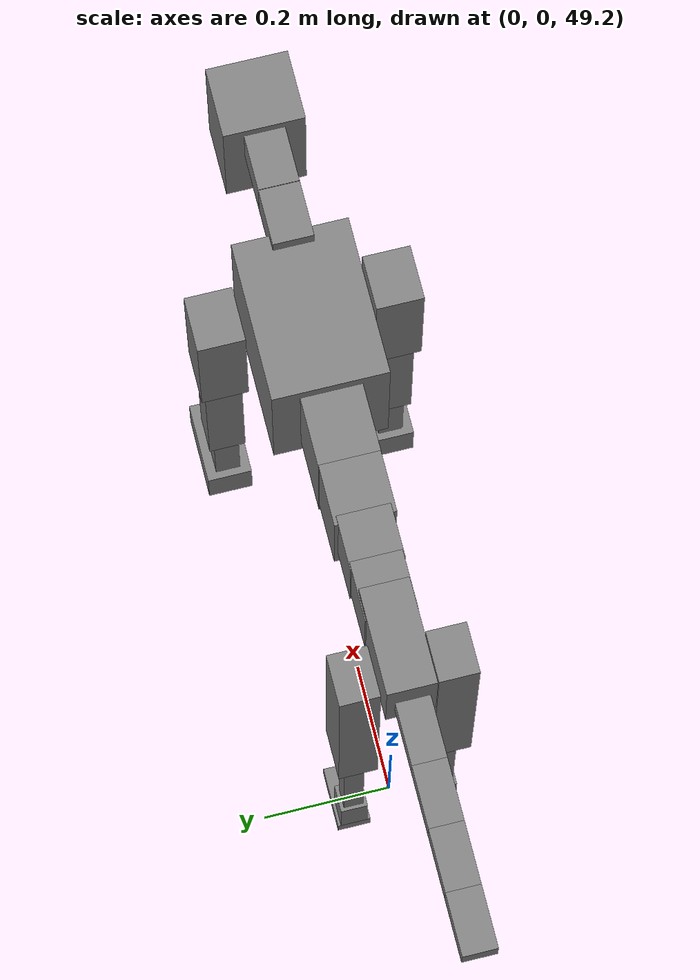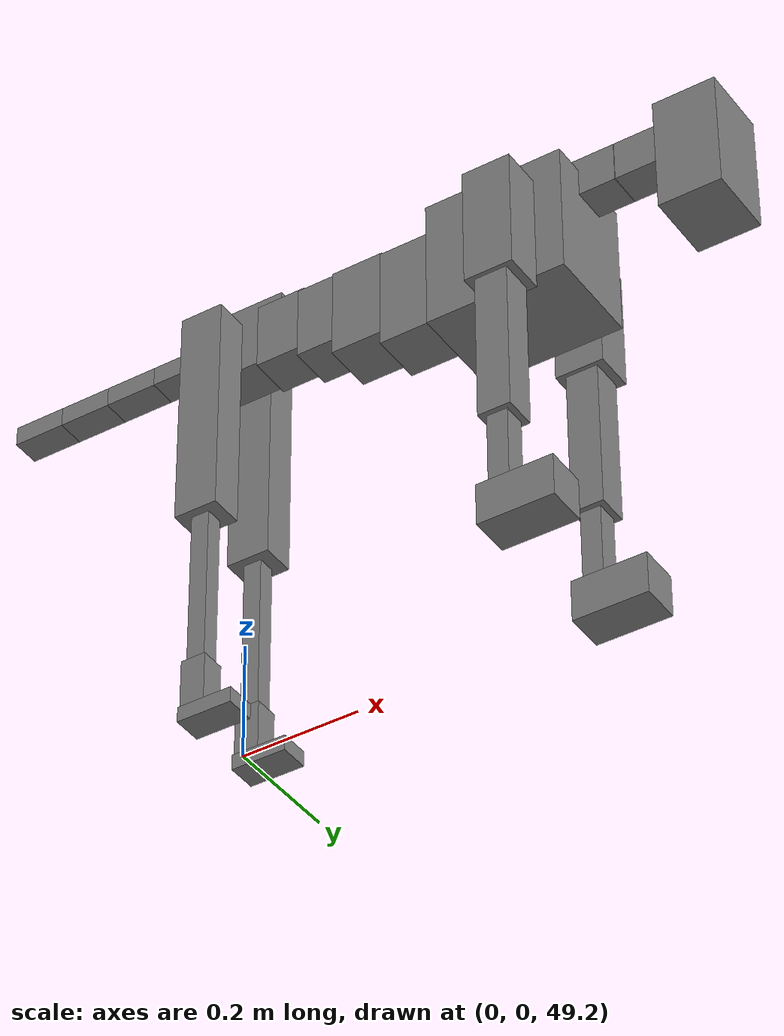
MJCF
<mujoco model="dog">

    <default>
        <joint armature="0.02" stiffness="1" damping="0.2" limited="true"/>
        <geom condim="3" friction="1 0.05 0.05" margin="0.01"/>
        <motor ctrllimited="true" ctrlrange="-1.0 1.0" forcelimited="true" gear="50"/>
    </default>

    <compiler inertiafromgeom="true" angle="radian"/>

    <option timestep="0.016" iterations="50" tolerance="1e-10" solver="Newton" jacobian="dense" cone="pyramidal"/>

    <size nconmax="20000" njmax="60000" nstack="5000000"/>
    <visual>
        <map force="0.1" zfar="30"/>
        <rgba haze="0.15 0.25 0.35 1"/>
        <quality shadowsize="2048"/>
        <global offwidth="800" offheight="800"/>
    </visual>

    <asset>
        <texture type="skybox" builtin="gradient" rgb1="0.3 0.5 0.7" rgb2="0 0 0" width="512" height="512"/>
        <texture name="texplane" type="2d" builtin="checker" rgb1=".2 .3 .4" rgb2=".1 0.15 0.2" width="512" height="512"
                 mark="cross" markrgb=".8 .8 .8"/>
        <texture name="texgeom" type="cube" builtin="flat" mark="cross" width="127" height="1278" rgb1="0.8 0.6 0.4"
                 rgb2="0.8 0.6 0.4" markrgb="1 1 1" random="0.01"/>

        <material name="matplane" reflectance="0.3" texture="texplane" texrepeat="1 1" texuniform="true"/>
        <material name="matgeom" texture="texgeom" texuniform="true" rgba="0.8 0.6 .4 1"/>
    </asset>

    <worldbody>
        <geom name="floor" pos="0 0 0" size="0 0 .25" type="plane" material="matplane" condim="3"/>

        <light directional="false" diffuse=".2 .2 .2" specular="0 0 0" pos="0 0 5" dir="0 0 -1" castshadow="false"/>
        <light mode="targetbodycom" target="torso" directional="false" diffuse=".8 .8 .8" specular="0.3 0.3 0.3"
               pos="0 0 4.0" dir="0 0 -1"/>

        <body name="root" pos="0 0 50">
            <freejoint name="root_1"/>
            <geom type="box" pos="0 0 -0.02" size="0.0774  0.0358  0.063" density="2030"/>

            <body name="spine1" pos="0.054 0 0">
                <joint name="spine1_y" axis="0 1 0" range="0 0.7" limited="true"/>
                <geom type="box" pos="0.02375 0 -0.03" size="0.04375  0.0375  0.05985" density="2030"/>

                <body name="spine2" pos="0.0612 0 0">
                    <joint name="spine2_y" axis="0 1 0" range="-0.15 0.15" limited="true"/>
                    <geom type="box" pos="0.03555  0  -0.04" size="0.04055  0.039  0.06615" density="2030"/>

                    <body name="spine3" pos="0.0730 0 0">
                        <joint name="spine3_y" axis="0 1 0" range="-0.15 0.15" limited="true"/>
                        <geom type="box" pos="0.03555  0  -0.057" size="0.04555  0.0445  0.081" density="2030"/>

                        <body name="spine4" pos="0.0780 0 0">
                            <joint name="spine4_y" axis="0 1 0" range="-0.15 0.15" limited="true"/>
                            <geom type="box" pos="0.05265  0  -0.07" size="0.05265  0.045  0.09135" density="2030"/>

                            <body name="torso" pos="0.1082 0 0">
                                <joint name="torso_y" axis="0 1 0" range="-0.15 0.15" limited="true"/>
                                <geom type="box" pos="0.11925  0  -0.085" size="0.11925  0.085  0.11745"
                                      density="2030"/>

                                <body name="neck1" pos="0.2160  0   0.0180">
                                    <joint name="neck1_y" axis="0 1 0" range="-1.2  -1" limited="true"/>
                                    <geom type="box" pos="0.0423  0  0" size="0.0423  0.03  0.036" density="2325"/>

                                    <body name="neck2" pos="0.0853  0  0">
                                        <joint name="neck2_y" axis="0 1 0" range="0.1  0" limited="true"/>
                                        <geom type="box" pos="0.0423  0  0" size="0.0423  0.03  0.036" density="2325"/>

                                        <body name="head" pos="0.0853  0  0">
                                            <joint name="head_y" axis="0 1 0" range="-0.3  -0.2" limited="true"/>
                                            <geom type="box" pos="0.0531  0  -0.055" size="0.0531  0.06  0.1044"
                                                  density="4030"/>

                                        </body>
                                    </body>
                                </body>

                                <body name="front_shoulder" pos="0.156  0   -0.0480">
                                    <joint name="front_shoulder_y" axis="0 1 0" range="-1 1.5" limited="true"/>
                                    <geom type="box" pos="0 0.13 -0.0804" size="0.0411  0.0351  0.1070" density="1158"/>
                                    <geom type="box" pos="0 -0.13 -0.0804" size="0.0411  0.0351  0.1070"
                                          density="1158"/>

                                    <body name="front_elbow" pos="0  0  -0.1608">
                                        <joint name="front_elbow_y" axis="0 1 0" range="-2 0" limited="true"/>
                                        <geom type="box" pos="0 0.13 -0.1442" size="0.0273  0.0279  0.1442"
                                              density="1081"/>
                                        <geom type="box" pos="0 -0.13 -0.1442" size="0.0273  0.0279  0.1442"
                                              density="1081"/>

                                        <body name="front_wrist" pos="0  0  -0.2884">
                                            <joint name="front_wrist_y" axis="0 1 0" range="-0.2 0" limited="true"/>
                                            <geom type="box" pos="0 0.13 -0.0736" size="0.0173  0.0192  0.0868"
                                                  density="1664"/>
                                            <geom type="box" pos="0 -0.13 -0.0736" size="0.0173  0.0192  0.0868"
                                                  density="1664"/>

                                            <body name="front_finger_end" pos="0  0  -0.1472">
                                                <joint name="front_finger_y" axis="0 1 0" range="-0.4 1"
                                                       limited="true"/>
                                                <geom type="box" pos="0.0346  0.13  -0.0209"
                                                      size="0.0634  0.0346  0.0359" density="1515"/>
                                                <geom type="box" pos="0.0346  -0.13  -0.0209"
                                                      size="0.0634  0.0346  0.0359" density="1515"/>

                                            </body>

                                        </body>
                                    </body>
                                </body>

                            </body>
                        </body>
                    </body>
                </body>
            </body>

            <body name="back_hip" pos="-0.03 0 -0.018">
                <joint name="back_hip_y" axis="0 1 0" range="-1.5 0.3" limited="true"/>
                <geom type="box" pos="0 0.07 -0.1755" size="0.0372  0.0292  0.1983" density="1154"/>
                <geom type="box" pos="0 -0.07 -0.1755" size="0.0372  0.0292  0.1983" density="1154"/>

                <body name="back_knee" pos="0  0  -0.3510">
                    <joint name="back_knee_y" axis="0 1 0" range="0 2.8" limited="true"/>
                    <geom type="box" pos="0 0.07 -0.1537" size="0.0154  0.0151  0.1693" density="1227"/>
                    <geom type="box" pos="0 -0.07 -0.1537" size="0.0154  0.0151  0.1693" density="1227"/>

                    <body name="back_ankle" pos="0  0  -0.3075">
                        <joint name="back_ankle_y" axis="0 1 0" range="-2.2 0" limited="true"/>
                        <geom type="box" pos="0 0.07 -0.0447" size="0.0209  0.0209  0.0560" density="1284"/>
                        <geom type="box" pos="0 -0.07 -0.0447" size="0.0209  0.0209  0.0560" density="1284"/>

                        <body name="back_toe_end" pos="0  0  -0.0894">
                            <joint name="back_toe_y" axis="0 1 0" range="-0.4 1" limited="true"/>
                            <geom type="box" pos="0.0254  0.07  0.0018" size="0.0466  0.0254  0.0132" density="1515"/>
                            <geom type="box" pos="0.0254  -0.07  0.0018" size="0.0466  0.0254  0.0132" density="1515"/>

                        </body>
                    </body>
                </body>
            </body>

            <body name="tail1" pos="-0.074 0 -0.006">
                <joint name="tail1_y" axis="0 1 0" range="-0.2 0.2" limited="true"/>
                <geom type="box" pos="-0.0536  0  0" size="0.045  0.025  0.0175" density="1587"/>

                <body name="tail2" pos="-0.09 0 0">
                    <joint name="tail2_y" axis="0 1 0" range="-0.2 0.2" limited="true"/>
                    <geom type="box" pos="-0.0536  0  0" size="0.045  0.025  0.0175" density="1587"/>

                    <body name="tail3" pos="-0.09 0 0">
                        <joint name="tail3_y" axis="0 1 0" range="-0.2 0.2" limited="true"/>
                        <geom type="box" pos="-0.0536  0  0" size="0.045  0.025  0.0175" density="1587"/>

                        <body name="tail4" pos="-0.09 0 0">
                            <joint name="tail4_y" axis="0 1 0" range="-0.2 0.2" limited="true"/>
                            <geom type="box" pos="-0.0536  0  0" size="0.045  0.025  0.0175" density="1587"/>

                        </body>
                    </body>
                </body>
            </body>
        </body>
    </worldbody>

    <actuator>
        <motor joint="spine1_y" forcerange="-150 150     "/>
        <motor joint="spine2_y" forcerange="-150 150     "/>
        <motor joint="spine3_y" forcerange="-150 150     "/>
        <motor joint="spine4_y" forcerange="-150 150     "/>
        <motor joint="torso_y" forcerange="-150 150     "/>
        <motor joint="neck1_y" forcerange="-100 100       "/>
        <motor joint="neck2_y" forcerange="-100 100       "/>
        <motor joint="head_y" forcerange="-150 150       "/>
        <motor joint="front_shoulder_y" forcerange="-166.64 167.44"/>
        <motor joint="front_elbow_y" forcerange="-198.05 104.85"/>
        <motor joint="front_wrist_y" forcerange="-91.47 61.95"/>
        <motor joint="front_finger_y" forcerange="-82.85 61.69"/>
        <motor joint="back_hip_y" forcerange="-259.61 329.17"/>
        <motor joint="back_knee_y" forcerange="-211.73 208.44"/>
        <motor joint="back_angle_y" forcerange="-160.14 74.22"/>
        <motor joint="back_toe_y" forcerange="-82.44 40.80"/>
        <motor joint="tail1_y" forcerange="-50 50     "/>
        <motor joint="tail2_y" forcerange="-50 50     "/>
        <motor joint="tail3_y" forcerange="-50 50     "/>
        <motor joint="tail4_y" forcerange="-50 50     "/>
    </actuator>
</mujoco>
